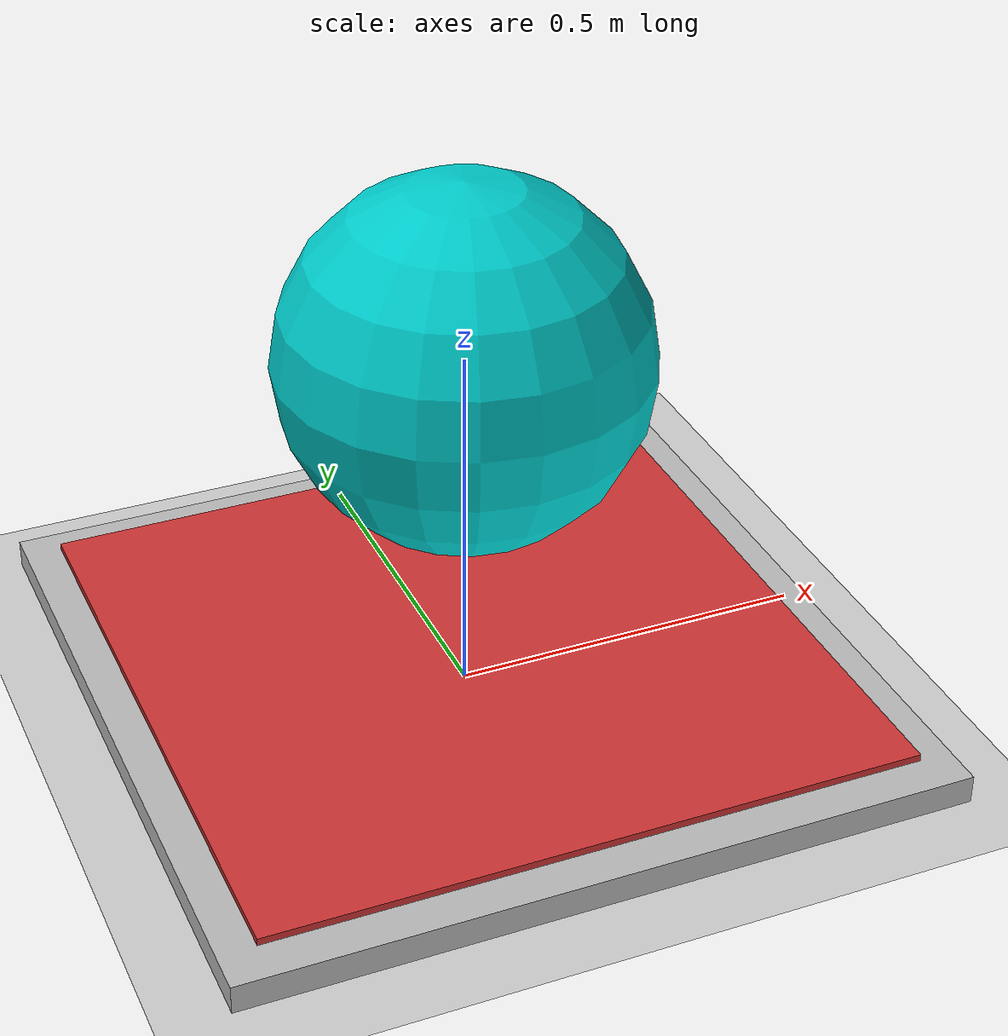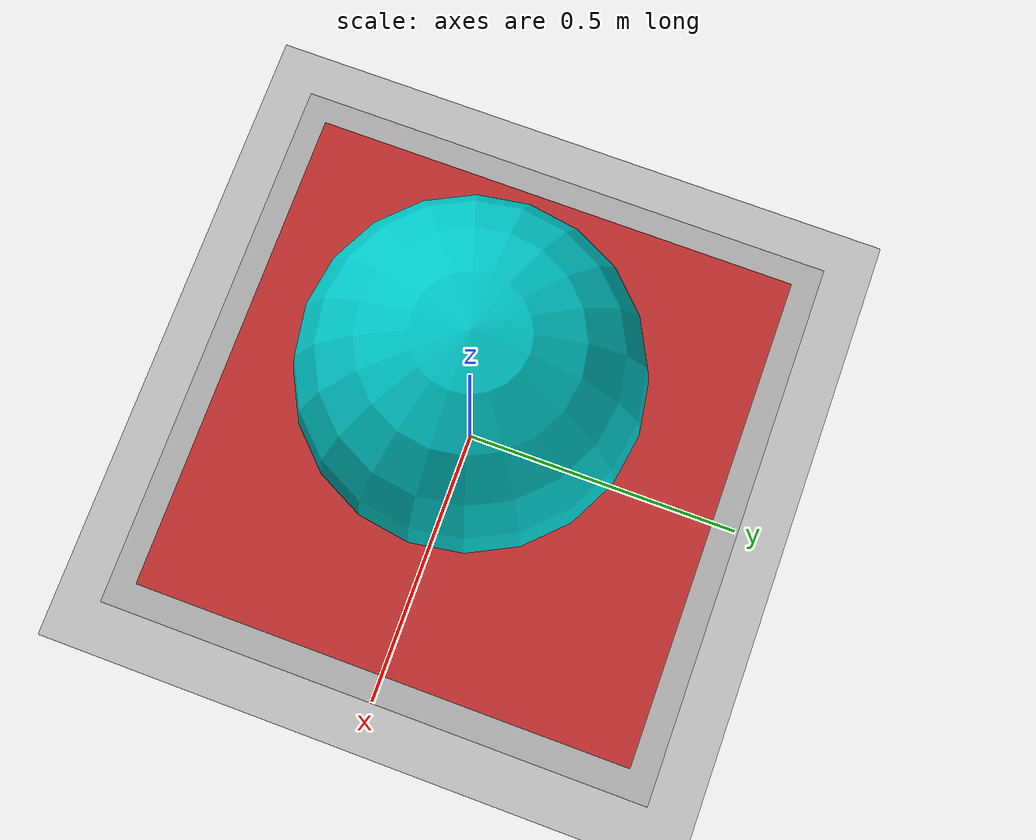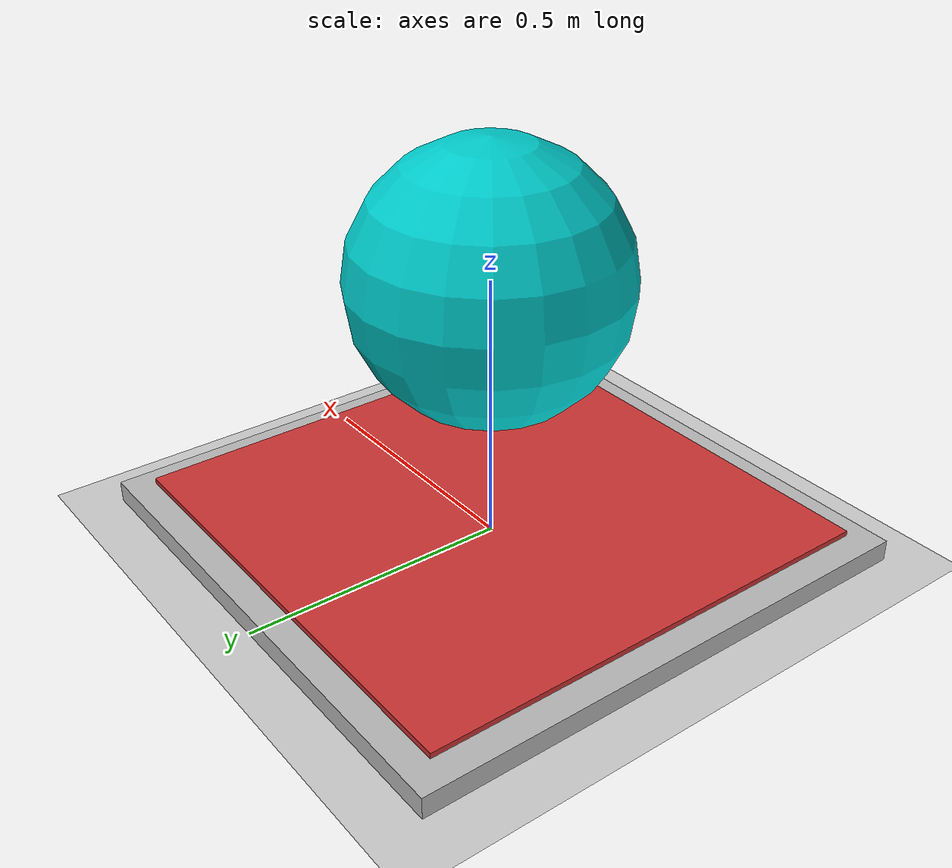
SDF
<?xml version="1.0" ?>
<sdf version="1.7">
  <world name="joint_wrenches">
    <plugin
      filename="gz-sim-apply-link-wrench-system"
      name="gz::sim::systems::ApplyLinkWrench">
    </plugin>

    <physics name="fast" type="ignored">
      <real_time_factor>0</real_time_factor>
    </physics>
    <model name="ground_plane">
      <static>true</static>
      <link name="link">
        <collision name="collision">
          <geometry>
            <plane>
              <normal>0 0 1</normal>
              <size>100 100</size>
            </plane>
          </geometry>
        </collision>
        <visual name="visual">
          <geometry>
            <plane>
              <normal>0 0 1</normal>
              <size>100 100</size>
            </plane>
          </geometry>
          <material>
            <ambient>0.8 0.8 0.8 1</ambient>
            <diffuse>0.8 0.8 0.8 1</diffuse>
            <specular>0.8 0.8 0.8 1</specular>
            <emissive>0.8 0.8 0.8 1</emissive>
          </material>
        </visual>
      </link>
    </model>
    <light type="directional" name="sun">
      <cast_shadows>true</cast_shadows>
      <pose>0 0 10 0 0 0</pose>
      <diffuse>1 1 1 1</diffuse>
      <specular>0.5 0.5 0.5 1</specular>
      <attenuation>
        <range>1000</range>
        <constant>0.9</constant>
        <linear>0.01</linear>
        <quadratic>0.001</quadratic>
      </attenuation>
      <direction>-0.5 0.1 -0.9</direction>
    </light>

    <model name="scale">
      <pose>0 0 0.02   0 0 0</pose>
      <link name="base">
        <inertial>
          <mass>2.0</mass>
          <inertia>
            <ixx>0.166933</ixx>
            <iyy>0.166933</iyy>
            <izz>0.333333</izz>
          </inertia>
        </inertial>
        <visual name="v1">
          <geometry>
            <box>
              <size>1 1 0.04</size>
            </box>
          </geometry>
        </visual>
        <collision name="c1">
          <pose>0.5 0.5 -0.01  0 0 0</pose>
          <geometry>
            <sphere>
              <radius>0.01</radius>
            </sphere>
          </geometry>
        </collision>
        <collision name="c2">
          <pose>0.5 -0.5 -0.01  0 0 0</pose>
          <geometry>
            <sphere>
              <radius>0.01</radius>
            </sphere>
          </geometry>
        </collision>
        <collision name="c3">
          <pose>-0.5 -0.5 -0.01  0 0 0</pose>
          <geometry>
            <sphere>
              <radius>0.01</radius>
            </sphere>
          </geometry>
        </collision>
        <collision name="c4">
          <pose>-0.5 0.5 -0.01  0 0 0</pose>
          <geometry>
            <sphere>
              <radius>0.01</radius>
            </sphere>
          </geometry>
        </collision>
      </link>
      <link name="sensor_plate">
        <pose relative_to="base">0 0 0.03   0 0 0</pose>
        <inertial>
          <mass>0.2</mass>
          <inertia>
            <ixx>0.0166933</ixx>
            <iyy>0.0166933</iyy>
            <izz>0.0333333</izz>
          </inertia>
        </inertial>
        <visual name="v1">
          <geometry>
            <box>
              <size>0.9 0.9 0.01</size>
            </box>
          </geometry>
          <material>
            <ambient>0.8 0.2 0.2 1</ambient>
            <diffuse>0.8 0.2 0.2 1</diffuse>
            <specular>0.8 0.2 0.2 1</specular>
          </material>
        </visual>
        <collision name="c1">
          <geometry>
            <box>
              <size>0.9 0.9 0.01</size>
            </box>
          </geometry>
        </collision>
      </link>

      <joint name="sensor_joint" type="fixed">
        <parent>base</parent>
        <child>sensor_plate</child>
      </joint>
    </model>

    <model name="weight">
      <pose>0 0 0.5   0 0 0</pose>
      <link name="base">
        <inertial>
          <mass>10</mass>
        </inertial>
        <visual name="v1">
          <geometry>
            <sphere>
              <radius>0.25</radius>
            </sphere>
          </geometry>
          <material>
            <ambient>0.0 0.8 0.8 1</ambient>
            <diffuse>0.0 0.8 0.8 1</diffuse>
            <specular>0.0 0.8 0.8 1</specular>
          </material>
        </visual>
        <collision name="c1">
          <geometry>
            <sphere>
              <radius>0.25</radius>
            </sphere>
          </geometry>
        </collision>
      </link>
    </model>

  </world>
</sdf>
